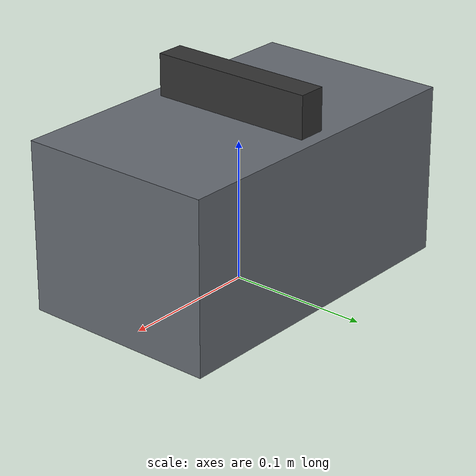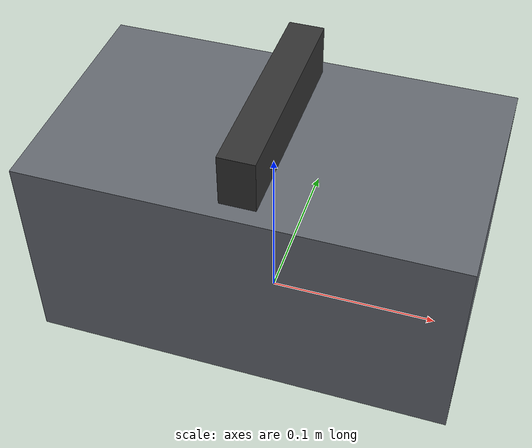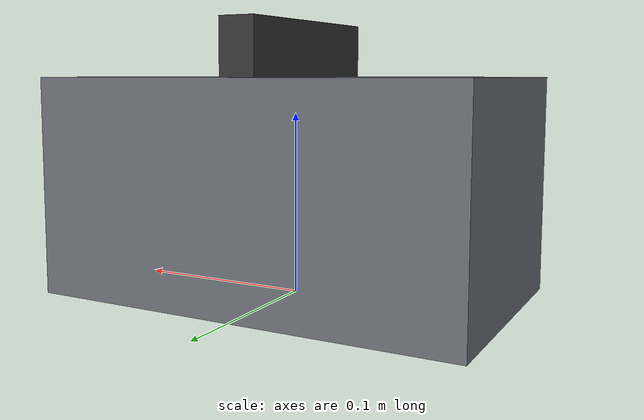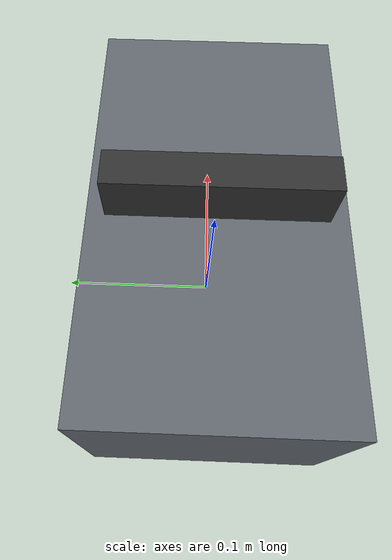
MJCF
<?xml version="1.0" encoding="utf-8"?>
<mujoco model="oil_water_separator">
  <compiler angle="radian" autolimits="true"/>
  <default>
    <default class="body"><geom contype="1" conaffinity="1"/></default>
  </default>
  <worldbody>
    <body name="base">
      <geom type="box" size="0.12 0.07 0.06" pos="0 0 0.06" rgba="0.4 0.42 0.45 1" class="body"/>
      <body name="baffle" pos="0 0 0.12">
        <joint name="baffle_joint" type="slide" axis="0 0 1" range="0 0.05" damping="1.0" frictionloss="0.3"/>
  <geom type="box" size="0.01 0.06 0.03" pos="0 0 0" rgba="0.2 0.2 0.2 1" class="body"/>
      </body>
    </body>
  </worldbody>
</mujoco>
